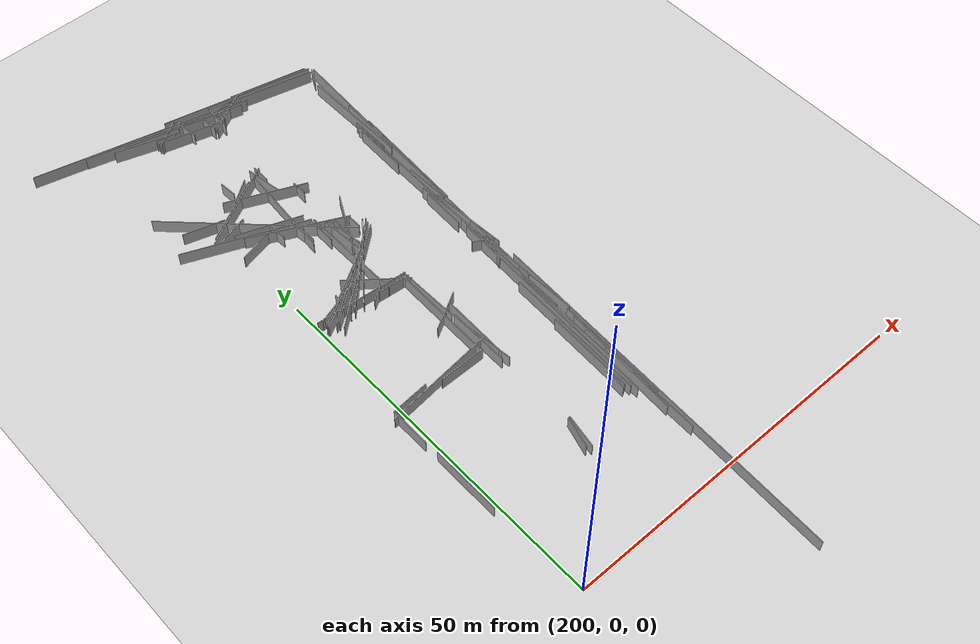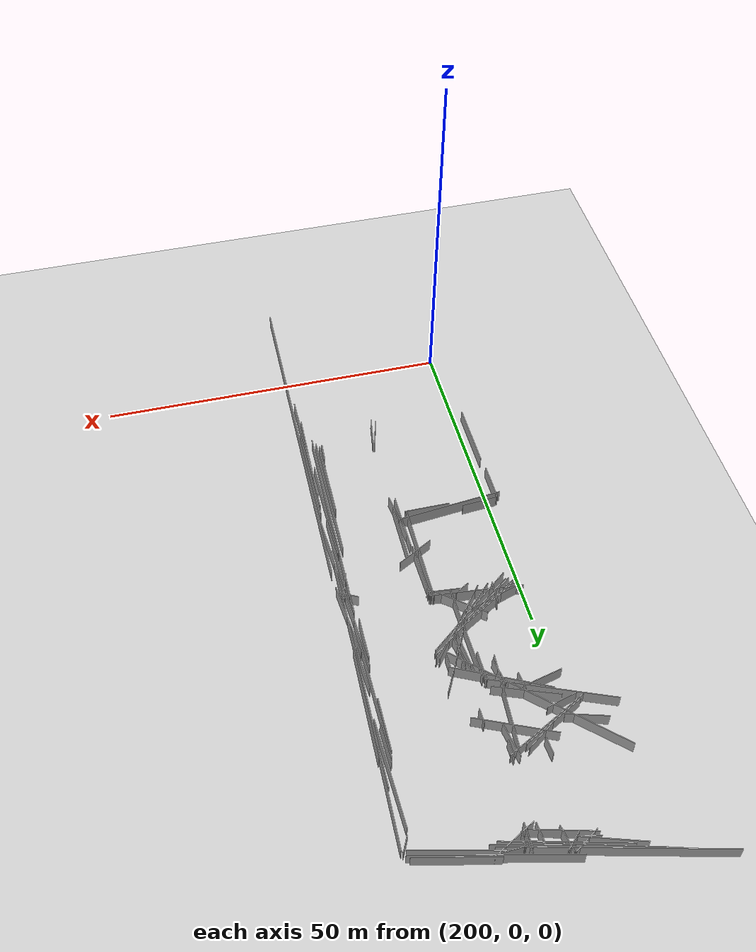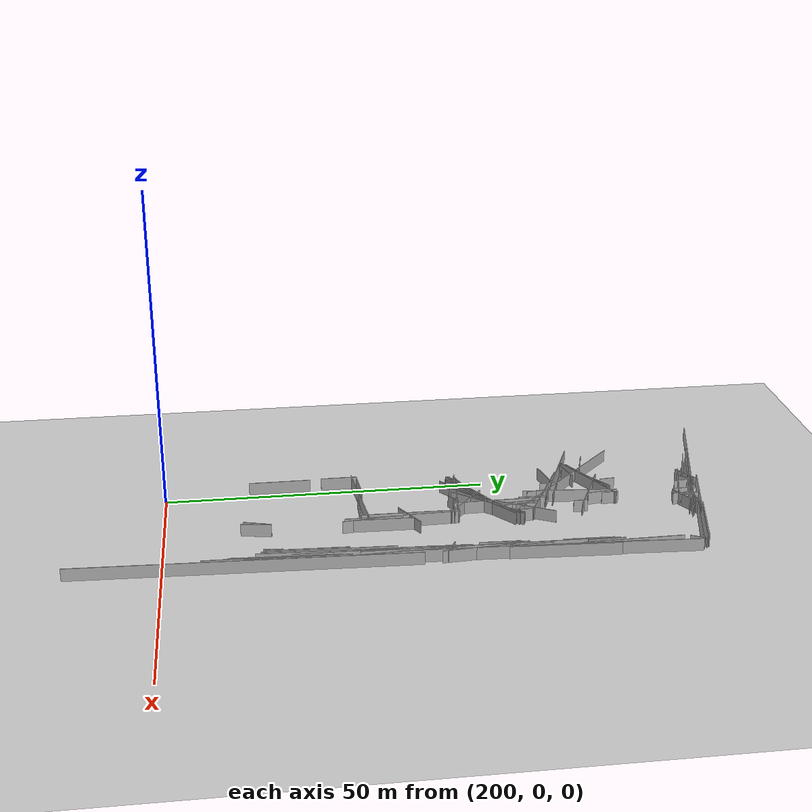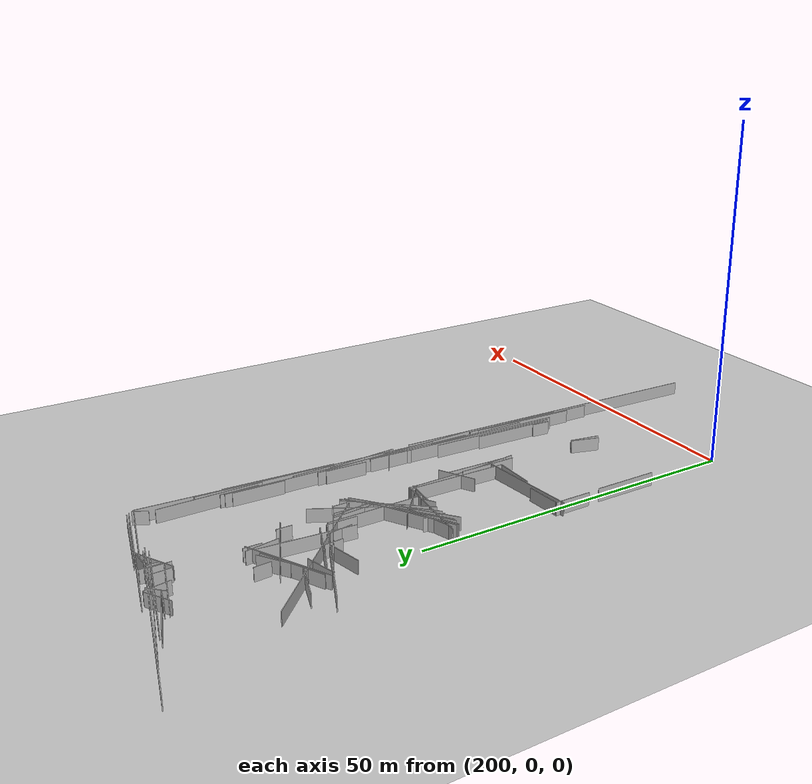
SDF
<sdf version="1.6">
 <world name="slam_world">
  <model name="ground_plane">
   <static>true</static>
   <link name="link">
    <collision name="collision">
     <geometry><plane><normal>0 0 1</normal><size>100 100</size></plane></geometry>
    </collision>
    <visual name="visual">
     <geometry><plane><normal>0 0 1</normal><size>100 100</size></plane></geometry>
     <material>
      <ambient>0.8 0.8 0.8 1</ambient>
      <diffuse>0.8 0.8 0.8 1</diffuse>
      <specular>0.8 0.8 0.8 1</specular>
     </material>
    </visual>
   </link>
  </model>
  <model name="wall_1">
   <static>true</static>
   <pose>223.50000000000003 19.400000000000006 1.0 0 0 1.5451609182732169</pose>
   <link name="link">
    <collision name="collision"><geometry><box><size>15.60512736250495 0.1 2.0</size></box></geometry></collision>
    <visual name="visual">
     <geometry><box><size>15.60512736250495 0.1 2.0</size></box></geometry>
     <material><ambient>0.5 0.5 0.5 1</ambient><diffuse>0.7 0.7 0.7 1</diffuse></material>
    </visual>
   </link>
  </model>
  <model name="wall_8">
   <static>true</static>
   <pose>198.90000000000003 17.799999999999997 1.0 0 0 1.5707963267948966</pose>
   <link name="link">
    <collision name="collision"><geometry><box><size>9.599999999999994 0.1 2.0</size></box></geometry></collision>
    <visual name="visual">
     <geometry><box><size>9.599999999999994 0.1 2.0</size></box></geometry>
     <material><ambient>0.5 0.5 0.5 1</ambient><diffuse>0.7 0.7 0.7 1</diffuse></material>
    </visual>
   </link>
  </model>
  <model name="wall_11">
   <static>true</static>
   <pose>223.60000000000002 11.800000000000011 1.0 0 0 1.5359267452401077</pose>
   <link name="link">
    <collision name="collision"><geometry><box><size>51.6313858035982 0.1 2.0</size></box></geometry></collision>
    <visual name="visual">
     <geometry><box><size>51.6313858035982 0.1 2.0</size></box></geometry>
     <material><ambient>0.5 0.5 0.5 1</ambient><diffuse>0.7 0.7 0.7 1</diffuse></material>
    </visual>
   </link>
  </model>
  <model name="wall_12">
   <static>true</static>
   <pose>225.30000000000004 70.70000000000002 1.0 0 0 1.521453694541926</pose>
   <link name="link">
    <collision name="collision"><geometry><box><size>16.21974105835231 0.1 2.0</size></box></geometry></collision>
    <visual name="visual">
     <geometry><box><size>16.21974105835231 0.1 2.0</size></box></geometry>
     <material><ambient>0.5 0.5 0.5 1</ambient><diffuse>0.7 0.7 0.7 1</diffuse></material>
    </visual>
   </link>
  </model>
  <model name="wall_16">
   <static>true</static>
   <pose>224.40000000000003 52.30000000000001 1.0 0 0 1.5325636003592957</pose>
   <link name="link">
    <collision name="collision"><geometry><box><size>36.6267661690191 0.1 2.0</size></box></geometry></collision>
    <visual name="visual">
     <geometry><box><size>36.6267661690191 0.1 2.0</size></box></geometry>
     <material><ambient>0.5 0.5 0.5 1</ambient><diffuse>0.7 0.7 0.7 1</diffuse></material>
    </visual>
   </link>
  </model>
  <model name="wall_21">
   <static>true</static>
   <pose>222.50000000000003 29.10000000000001 1.0 0 0 1.5325983551641331</pose>
   <link name="link">
    <collision name="collision"><geometry><box><size>31.42292157008957 0.1 2.0</size></box></geometry></collision>
    <visual name="visual">
     <geometry><box><size>31.42292157008957 0.1 2.0</size></box></geometry>
     <material><ambient>0.5 0.5 0.5 1</ambient><diffuse>0.7 0.7 0.7 1</diffuse></material>
    </visual>
   </link>
  </model>
  <model name="wall_24">
   <static>true</static>
   <pose>223.40000000000003 47.60000000000001 1.0 0 0 1.555172598174419</pose>
   <link name="link">
    <collision name="collision"><geometry><box><size>38.40468721393263 0.1 2.0</size></box></geometry></collision>
    <visual name="visual">
     <geometry><box><size>38.40468721393263 0.1 2.0</size></box></geometry>
     <material><ambient>0.5 0.5 0.5 1</ambient><diffuse>0.7 0.7 0.7 1</diffuse></material>
    </visual>
   </link>
  </model>
  <model name="wall_37">
   <static>true</static>
   <pose>223.10000000000002 14.600000000000009 1.0 0 0 1.5485777614681788</pose>
   <link name="link">
    <collision name="collision">
     <geometry><box><size>18.004443895883067 0.1 2.0</size></box></geometry>
    </collision>
    <visual name="visual">
     <geometry><box><size>18.004443895883067 0.1 2.0</size></box></geometry>
     <material><ambient>0.5 0.5 0.5 1</ambient><diffuse>0.7 0.7 0.7 1</diffuse></material>
    </visual>
   </link>
  </model>
  <model name="wall_61">
   <static>true</static>
   <pose>200.90000000000003 84.30000000000001 1.0 0 0 -0.24497866312686414</pose>
   <link name="link">
    <collision name="collision">
     <geometry><box><size>28.861739379323623 0.1 2.0</size></box></geometry>
    </collision>
    <visual name="visual">
     <geometry><box><size>28.861739379323623 0.1 2.0</size></box></geometry>
     <material><ambient>0.5 0.5 0.5 1</ambient><diffuse>0.7 0.7 0.7 1</diffuse></material>
    </visual>
   </link>
  </model>
  <model name="wall_83">
   <static>true</static>
   <pose>221.8 24.10000000000001 1.0 0 0 1.5405025668761203</pose>
   <link name="link">
    <collision name="collision">
     <geometry><box><size>19.809088823062996 0.1 2.0</size></box></geometry>
    </collision>
    <visual name="visual">
     <geometry><box><size>19.809088823062996 0.1 2.0</size></box></geometry>
     <material><ambient>0.5 0.5 0.5 1</ambient><diffuse>0.7 0.7 0.7 1</diffuse></material>
    </visual>
   </link>
  </model>
  <model name="wall_109">
   <static>true</static>
   <pose>213.30000000000004 30.100000000000023 1.0 0 0 -1.457004319651187</pose>
   <link name="link">
    <collision name="collision"><geometry><box><size>7.045565981523416 0.1 2.0</size></box></geometry></collision>
    <visual name="visual">
     <geometry><box><size>7.045565981523416 0.1 2.0</size></box></geometry>
     <material><ambient>0.5 0.5 0.5 1</ambient><diffuse>0.7 0.7 0.7 1</diffuse></material>
    </visual>
   </link>
  </model>
  <model name="wall_140">
   <static>true</static>
   <pose>222.80000000000004 26.60000000000001 1.0 0 0 1.5582969777755358</pose>
   <link name="link">
    <collision name="collision"><geometry><box><size>16.00124995117572 0.1 2.0</size></box></geometry></collision>
    <visual name="visual">
     <geometry><box><size>16.00124995117572 0.1 2.0</size></box></geometry>
     <material><ambient>0.5 0.5 0.5 1</ambient><diffuse>0.7 0.7 0.7 1</diffuse></material>
    </visual>
   </link>
  </model>
  <model name="wall_145">
   <static>true</static>
   <pose>212.00000000000003 37.10000000000002 1.0 0 0 1.5574637835007517</pose>
   <link name="link">
    <collision name="collision">
     <geometry><box><size>15.001333274079341 0.1 2.0</size></box></geometry>
    </collision>
    <visual name="visual">
     <geometry><box><size>15.001333274079341 0.1 2.0</size></box></geometry>
     <material><ambient>0.5 0.5 0.5 1</ambient><diffuse>0.7 0.7 0.7 1</diffuse></material>
    </visual>
   </link>
  </model>
  <model name="wall_151">
   <static>true</static>
   <pose>215.10000000000002 81.80000000000001 1.0 0 0 -0.23109066719589785</pose>
   <link name="link">
    <collision name="collision"><geometry><box><size>20.95709903588756 0.1 2.0</size></box></geometry></collision>
    <visual name="visual">
     <geometry><box><size>20.95709903588756 0.1 2.0</size></box></geometry>
     <material><ambient>0.5 0.5 0.5 1</ambient><diffuse>0.7 0.7 0.7 1</diffuse></material>
    </visual>
   </link>
  </model>
  <model name="wall_162">
   <static>true</static>
   <pose>207.20000000000002 58.80000000000001 1.0 0 0 -0.45706875654779</pose>
   <link name="link">
    <collision name="collision"><geometry><box><size>13.59558751948586 0.1 2.0</size></box></geometry></collision>
    <visual name="visual">
     <geometry><box><size>13.59558751948586 0.1 2.0</size></box></geometry>
     <material><ambient>0.5 0.5 0.5 1</ambient><diffuse>0.7 0.7 0.7 1</diffuse></material>
    </visual>
   </link>
  </model>
  <model name="wall_185">
   <static>true</static>
   <pose>205.70000000000005 82.40000000000002 1.0 0 0 -0.25168997175818636</pose>
   <link name="link">
    <collision name="collision"><geometry><box><size>14.45544879967412 0.1 2.0</size></box></geometry></collision>
    <visual name="visual">
     <geometry><box><size>14.45544879967412 0.1 2.0</size></box></geometry>
     <material><ambient>0.5 0.5 0.5 1</ambient><diffuse>0.7 0.7 0.7 1</diffuse></material>
    </visual>
   </link>
  </model>
  <model name="wall_213">
   <static>true</static>
   <pose>219.40000000000003 80.20000000000002 1.0 0 0 -0.24084645524141302</pose>
   <link name="link">
    <collision name="collision">
     <geometry><box><size>11.738824472663332 0.1 2.0</size></box></geometry>
    </collision>
    <visual name="visual">
     <geometry><box><size>11.738824472663332 0.1 2.0</size></box></geometry>
     <material><ambient>0.5 0.5 0.5 1</ambient><diffuse>0.7 0.7 0.7 1</diffuse></material>
    </visual>
   </link>
  </model>
  <model name="wall_238">
   <static>true</static>
   <pose>213.10000000000002 54.80000000000001 1.0 0 0 1.5707963267948966</pose>
   <link name="link">
    <collision name="collision"><geometry><box><size>2.0 0.1 2.0</size></box></geometry></collision>
    <visual name="visual">
     <geometry><box><size>2.0 0.1 2.0</size></box></geometry>
     <material><ambient>0.5 0.5 0.5 1</ambient><diffuse>0.7 0.7 0.7 1</diffuse></material>
    </visual>
   </link>
  </model>
  <model name="wall_255">
   <static>true</static>
   <pose>209.5 49.20000000000002 1.0 0 0 0.7853981633974483</pose>
   <link name="link">
    <collision name="collision">
     <geometry><box><size>14.142135623730951 0.1 2.0</size></box></geometry>
    </collision>
    <visual name="visual">
     <geometry><box><size>14.142135623730951 0.1 2.0</size></box></geometry>
     <material><ambient>0.5 0.5 0.5 1</ambient><diffuse>0.7 0.7 0.7 1</diffuse></material>
    </visual>
   </link>
  </model>
  <model name="wall_286">
   <static>true</static>
   <pose>222.80000000000004 48.900000000000006 1.0 0 0 1.5385494443596444</pose>
   <link name="link">
    <collision name="collision"><geometry><box><size>6.203224967708317 0.1 2.0</size></box></geometry></collision>
    <visual name="visual">
     <geometry><box><size>6.203224967708317 0.1 2.0</size></box></geometry>
     <material><ambient>0.5 0.5 0.5 1</ambient><diffuse>0.7 0.7 0.7 1</diffuse></material>
    </visual>
   </link>
  </model>
  <model name="wall_287">
   <static>true</static>
   <pose>223.4 62.000000000000014 1.0 0 0 1.5444866095419758</pose>
   <link name="link">
    <collision name="collision"><geometry><box><size>7.602631123499279 0.1 2.0</size></box></geometry></collision>
    <visual name="visual">
     <geometry><box><size>7.602631123499279 0.1 2.0</size></box></geometry>
     <material><ambient>0.5 0.5 0.5 1</ambient><diffuse>0.7 0.7 0.7 1</diffuse></material>
    </visual>
   </link>
  </model>
  <model name="wall_288">
   <static>true</static>
   <pose>212.60000000000002 40.20000000000002 1.0 0 0 -1.5480729659532504</pose>
   <link name="link">
    <collision name="collision"><geometry><box><size>8.802272433866166 0.1 2.0</size></box></geometry></collision>
    <visual name="visual">
     <geometry><box><size>8.802272433866166 0.1 2.0</size></box></geometry>
     <material><ambient>0.5 0.5 0.5 1</ambient><diffuse>0.7 0.7 0.7 1</diffuse></material>
    </visual>
   </link>
  </model>
  <model name="wall_299">
   <static>true</static>
   <pose>207.9 48.80000000000001 1.0 0 0 0.6435011087932851</pose>
   <link name="link">
    <collision name="collision"><geometry><box><size>16.00000000000002 0.1 2.0</size></box></geometry></collision>
    <visual name="visual">
     <geometry><box><size>16.00000000000002 0.1 2.0</size></box></geometry>
     <material><ambient>0.5 0.5 0.5 1</ambient><diffuse>0.7 0.7 0.7 1</diffuse></material>
    </visual>
   </link>
  </model>
  <model name="wall_307">
   <static>true</static>
   <pose>223.10000000000002 17.60000000000001 1.0 0 0 1.5220544754849679</pose>
   <link name="link">
    <collision name="collision"><geometry><box><size>16.41950060141904 0.1 2.0</size></box></geometry></collision>
    <visual name="visual">
     <geometry><box><size>16.41950060141904 0.1 2.0</size></box></geometry>
     <material><ambient>0.5 0.5 0.5 1</ambient><diffuse>0.7 0.7 0.7 1</diffuse></material>
    </visual>
   </link>
  </model>
  <model name="wall_311">
   <static>true</static>
   <pose>201.10000000000002 83.10000000000001 1.0 0 0 -0.3142318990843377</pose>
   <link name="link">
    <collision name="collision"><geometry><box><size>8.411896337925235 0.1 2.0</size></box></geometry></collision>
    <visual name="visual">
     <geometry><box><size>8.411896337925235 0.1 2.0</size></box></geometry>
     <material><ambient>0.5 0.5 0.5 1</ambient><diffuse>0.7 0.7 0.7 1</diffuse></material>
    </visual>
   </link>
  </model>
  <model name="wall_329">
   <static>true</static>
   <pose>204.00000000000003 45.80000000000001 1.0 0 0 1.5083775167989426</pose>
   <link name="link">
    <collision name="collision">
     <geometry><box><size>3.2062439083762673 0.1 2.0</size></box></geometry>
    </collision>
    <visual name="visual">
     <geometry><box><size>3.2062439083762673 0.1 2.0</size></box></geometry>
     <material><ambient>0.5 0.5 0.5 1</ambient><diffuse>0.7 0.7 0.7 1</diffuse></material>
    </visual>
   </link>
  </model>
  <model name="wall_334">
   <static>true</static>
   <pose>212.4 80.4 1.0 0 0 0.5041659614791507</pose>
   <link name="link">
    <collision name="collision"><geometry><box><size>6.624198064671682 0.1 2.0</size></box></geometry></collision>
    <visual name="visual">
     <geometry><box><size>6.624198064671682 0.1 2.0</size></box></geometry>
     <material><ambient>0.5 0.5 0.5 1</ambient><diffuse>0.7 0.7 0.7 1</diffuse></material>
    </visual>
   </link>
  </model>
  <model name="wall_344">
   <static>true</static>
   <pose>209.60000000000002 51.2 1.0 0 0 -1.5569083308639264</pose>
   <link name="link">
    <collision name="collision"><geometry><box><size>14.40138882191576 0.1 2.0</size></box></geometry></collision>
    <visual name="visual">
     <geometry><box><size>14.40138882191576 0.1 2.0</size></box></geometry>
     <material><ambient>0.5 0.5 0.5 1</ambient><diffuse>0.7 0.7 0.7 1</diffuse></material>
    </visual>
   </link>
  </model>
  <model name="wall_356">
   <static>true</static>
   <pose>201.4 61.90000000000002 1.0 0 0 -0.395689592054582</pose>
   <link name="link">
    <collision name="collision">
     <geometry><box><size>17.123083834403204 0.1 2.0</size></box></geometry>
    </collision>
    <visual name="visual">
     <geometry><box><size>17.123083834403204 0.1 2.0</size></box></geometry>
     <material><ambient>0.5 0.5 0.5 1</ambient><diffuse>0.7 0.7 0.7 1</diffuse></material>
    </visual>
   </link>
  </model>
  <model name="wall_363">
   <static>true</static>
   <pose>219.60000000000002 81.00000000000001 1.0 0 0 -0.22266094063636502</pose>
   <link name="link">
    <collision name="collision">
     <geometry><box><size>10.868302535354843 0.1 2.0</size></box></geometry>
    </collision>
    <visual name="visual">
     <geometry><box><size>10.868302535354843 0.1 2.0</size></box></geometry>
     <material><ambient>0.5 0.5 0.5 1</ambient><diffuse>0.7 0.7 0.7 1</diffuse></material>
    </visual>
   </link>
  </model>
  <model name="wall_379">
   <static>true</static>
   <pose>208.90000000000003 29.600000000000023 1.0 0 0 0.0</pose>
   <link name="link">
    <collision name="collision"><geometry><box><size>6.399999999999977 0.1 2.0</size></box></geometry></collision>
    <visual name="visual">
     <geometry><box><size>6.399999999999977 0.1 2.0</size></box></geometry>
     <material><ambient>0.5 0.5 0.5 1</ambient><diffuse>0.7 0.7 0.7 1</diffuse></material>
    </visual>
   </link>
  </model>
  <model name="wall_381">
   <static>true</static>
   <pose>224.4 68.60000000000001 1.0 0 0 -1.5576391913221417</pose>
   <link name="link">
    <collision name="collision"><geometry><box><size>15.20131573252791 0.1 2.0</size></box></geometry></collision>
    <visual name="visual">
     <geometry><box><size>15.20131573252791 0.1 2.0</size></box></geometry>
     <material><ambient>0.5 0.5 0.5 1</ambient><diffuse>0.7 0.7 0.7 1</diffuse></material>
    </visual>
   </link>
  </model>
  <model name="wall_382">
   <static>true</static>
   <pose>204.1 83.10000000000001 1.0 0 0 -0.2719384216544951</pose>
   <link name="link">
    <collision name="collision"><geometry><box><size>21.59351754578212 0.1 2.0</size></box></geometry></collision>
    <visual name="visual">
     <geometry><box><size>21.59351754578212 0.1 2.0</size></box></geometry>
     <material><ambient>0.5 0.5 0.5 1</ambient><diffuse>0.7 0.7 0.7 1</diffuse></material>
    </visual>
   </link>
  </model>
  <model name="wall_412">
   <static>true</static>
   <pose>205.8 30.000000000000014 1.0 0 0 0.10352467451054413</pose>
   <link name="link">
    <collision name="collision"><geometry><box><size>15.4828937863695 0.1 2.0</size></box></geometry></collision>
    <visual name="visual">
     <geometry><box><size>15.4828937863695 0.1 2.0</size></box></geometry>
     <material><ambient>0.5 0.5 0.5 1</ambient><diffuse>0.7 0.7 0.7 1</diffuse></material>
    </visual>
   </link>
  </model>
  <model name="wall_424">
   <static>true</static>
   <pose>221.3 20.900000000000006 1.0 0 0 1.5380211823908227</pose>
   <link name="link">
    <collision name="collision"><geometry><box><size>12.20655561573369 0.1 2.0</size></box></geometry></collision>
    <visual name="visual">
     <geometry><box><size>12.20655561573369 0.1 2.0</size></box></geometry>
     <material><ambient>0.5 0.5 0.5 1</ambient><diffuse>0.7 0.7 0.7 1</diffuse></material>
    </visual>
   </link>
  </model>
  <model name="wall_433">
   <static>true</static>
   <pose>208.10000000000002 48.0 1.0 0 0 0.6786624907483135</pose>
   <link name="link">
    <collision name="collision">
     <geometry><box><size>15.929846201391884 0.1 2.0</size></box></geometry>
    </collision>
    <visual name="visual">
     <geometry><box><size>15.929846201391884 0.1 2.0</size></box></geometry>
     <material><ambient>0.5 0.5 0.5 1</ambient><diffuse>0.7 0.7 0.7 1</diffuse></material>
    </visual>
   </link>
  </model>
  <model name="wall_475">
   <static>true</static>
   <pose>204.80000000000004 59.90000000000002 1.0 0 0 -1.4940244355251227</pose>
   <link name="link">
    <collision name="collision"><geometry><box><size>2.607680962081053 0.1 2.0</size></box></geometry></collision>
    <visual name="visual">
     <geometry><box><size>2.607680962081053 0.1 2.0</size></box></geometry>
     <material><ambient>0.5 0.5 0.5 1</ambient><diffuse>0.7 0.7 0.7 1</diffuse></material>
    </visual>
   </link>
  </model>
  <model name="wall_498">
   <static>true</static>
   <pose>198.70000000000005 27.200000000000003 1.0 0 0 1.5707963267948966</pose>
   <link name="link">
    <collision name="collision"><geometry><box><size>5.599999999999994 0.1 2.0</size></box></geometry></collision>
    <visual name="visual">
     <geometry><box><size>5.599999999999994 0.1 2.0</size></box></geometry>
     <material><ambient>0.5 0.5 0.5 1</ambient><diffuse>0.7 0.7 0.7 1</diffuse></material>
    </visual>
   </link>
  </model>
  <model name="wall_510">
   <static>true</static>
   <pose>207.60000000000002 65.90000000000002 1.0 0 0 -0.4236689218775139</pose>
   <link name="link">
    <collision name="collision"><geometry><box><size>11.18928058455953 0.1 2.0</size></box></geometry></collision>
    <visual name="visual">
     <geometry><box><size>11.18928058455953 0.1 2.0</size></box></geometry>
     <material><ambient>0.5 0.5 0.5 1</ambient><diffuse>0.7 0.7 0.7 1</diffuse></material>
    </visual>
   </link>
  </model>
  <model name="wall_515">
   <static>true</static>
   <pose>211.3 63.70000000000002 1.0 0 0 1.5707963267948966</pose>
   <link name="link">
    <collision name="collision">
     <geometry><box><size>2.1999999999999886 0.1 2.0</size></box></geometry>
    </collision>
    <visual name="visual">
     <geometry><box><size>2.1999999999999886 0.1 2.0</size></box></geometry>
     <material><ambient>0.5 0.5 0.5 1</ambient><diffuse>0.7 0.7 0.7 1</diffuse></material>
    </visual>
   </link>
  </model>
  <model name="wall_518">
   <static>true</static>
   <pose>204.20000000000002 82.50000000000001 1.0 0 0 0.5743048301747007</pose>
   <link name="link">
    <collision name="collision"><geometry><box><size>4.049691346263355 0.1 2.0</size></box></geometry></collision>
    <visual name="visual">
     <geometry><box><size>4.049691346263355 0.1 2.0</size></box></geometry>
     <material><ambient>0.5 0.5 0.5 1</ambient><diffuse>0.7 0.7 0.7 1</diffuse></material>
    </visual>
   </link>
  </model>
  <model name="wall_531">
   <static>true</static>
   <pose>201.40000000000003 30.200000000000003 1.0 0 0 0.07982998571223844</pose>
   <link name="link">
    <collision name="collision"><geometry><box><size>5.015974481593782 0.1 2.0</size></box></geometry></collision>
    <visual name="visual">
     <geometry><box><size>5.015974481593782 0.1 2.0</size></box></geometry>
     <material><ambient>0.5 0.5 0.5 1</ambient><diffuse>0.7 0.7 0.7 1</diffuse></material>
    </visual>
   </link>
  </model>
  <model name="wall_534">
   <static>true</static>
   <pose>223.20000000000002 41.7 1.0 0 0 -0.4939413689195884</pose>
   <link name="link">
    <collision name="collision"><geometry><box><size>2.952964612046653 0.1 2.0</size></box></geometry></collision>
    <visual name="visual">
     <geometry><box><size>2.952964612046653 0.1 2.0</size></box></geometry>
     <material><ambient>0.5 0.5 0.5 1</ambient><diffuse>0.7 0.7 0.7 1</diffuse></material>
    </visual>
   </link>
  </model>
  <model name="wall_535">
   <static>true</static>
   <pose>208.10000000000002 44.20000000000002 1.0 0 0 0.5404195002705799</pose>
   <link name="link">
    <collision name="collision"><geometry><box><size>2.332380757938114 0.1 2.0</size></box></geometry></collision>
    <visual name="visual">
     <geometry><box><size>2.332380757938114 0.1 2.0</size></box></geometry>
     <material><ambient>0.5 0.5 0.5 1</ambient><diffuse>0.7 0.7 0.7 1</diffuse></material>
    </visual>
   </link>
  </model>
  <model name="wall_558">
   <static>true</static>
   <pose>204.70000000000002 46.900000000000006 1.0 0 0 0.5369107427400438</pose>
   <link name="link">
    <collision name="collision"><geometry><box><size>9.775479527879979 0.1 2.0</size></box></geometry></collision>
    <visual name="visual">
     <geometry><box><size>9.775479527879979 0.1 2.0</size></box></geometry>
     <material><ambient>0.5 0.5 0.5 1</ambient><diffuse>0.7 0.7 0.7 1</diffuse></material>
    </visual>
   </link>
  </model>
  <model name="wall_560">
   <static>true</static>
   <pose>209.10000000000002 56.60000000000001 1.0 0 0 -1.5707963267948966</pose>
   <link name="link">
    <collision name="collision"><geometry><box><size>4.400000000000006 0.1 2.0</size></box></geometry></collision>
    <visual name="visual">
     <geometry><box><size>4.400000000000006 0.1 2.0</size></box></geometry>
     <material><ambient>0.5 0.5 0.5 1</ambient><diffuse>0.7 0.7 0.7 1</diffuse></material>
    </visual>
   </link>
  </model>
  <model name="wall_565">
   <static>true</static>
   <pose>223.90000000000003 64.60000000000001 1.0 0 0 1.5707963267948966</pose>
   <link name="link">
    <collision name="collision"><geometry><box><size>5.599999999999994 0.1 2.0</size></box></geometry></collision>
    <visual name="visual">
     <geometry><box><size>5.599999999999994 0.1 2.0</size></box></geometry>
     <material><ambient>0.5 0.5 0.5 1</ambient><diffuse>0.7 0.7 0.7 1</diffuse></material>
    </visual>
   </link>
  </model>
  <model name="wall_577">
   <static>true</static>
   <pose>208.70000000000002 67.80000000000001 1.0 0 0 -1.4056476493802679</pose>
   <link name="link">
    <collision name="collision"><geometry><box><size>4.866210024238589 0.1 2.0</size></box></geometry></collision>
    <visual name="visual">
     <geometry><box><size>4.866210024238589 0.1 2.0</size></box></geometry>
     <material><ambient>0.5 0.5 0.5 1</ambient><diffuse>0.7 0.7 0.7 1</diffuse></material>
    </visual>
   </link>
  </model>
  <model name="wall_579">
   <static>true</static>
   <pose>203.50000000000003 62.70000000000002 1.0 0 0 -0.7691833683930456</pose>
   <link name="link">
    <collision name="collision">
     <geometry><box><size>26.166390656718402 0.1 2.0</size></box></geometry>
    </collision>
    <visual name="visual">
     <geometry><box><size>26.166390656718402 0.1 2.0</size></box></geometry>
     <material><ambient>0.5 0.5 0.5 1</ambient><diffuse>0.7 0.7 0.7 1</diffuse></material>
    </visual>
   </link>
  </model>
  <model name="wall_592">
   <static>true</static>
   <pose>209.30000000000004 46.000000000000014 1.0 0 0 -0.6889243882148601</pose>
   <link name="link">
    <collision name="collision"><geometry><box><size>8.8090862182181 0.1 2.0</size></box></geometry></collision>
    <visual name="visual">
     <geometry><box><size>8.8090862182181 0.1 2.0</size></box></geometry>
     <material><ambient>0.5 0.5 0.5 1</ambient><diffuse>0.7 0.7 0.7 1</diffuse></material>
    </visual>
   </link>
  </model>
  <model name="wall_602">
   <static>true</static>
   <pose>213.50000000000003 81.70000000000002 1.0 0 0 0.04164257909858596</pose>
   <link name="link">
    <collision name="collision"><geometry><box><size>4.804164859785736 0.1 2.0</size></box></geometry></collision>
    <visual name="visual">
     <geometry><box><size>4.804164859785736 0.1 2.0</size></box></geometry>
     <material><ambient>0.5 0.5 0.5 1</ambient><diffuse>0.7 0.7 0.7 1</diffuse></material>
    </visual>
   </link>
  </model>
  <model name="wall_606">
   <static>true</static>
   <pose>210.60000000000002 53.80000000000001 1.0 0 0 -1.4827889532671528</pose>
   <link name="link">
    <collision name="collision"><geometry><box><size>6.826419266350418 0.1 2.0</size></box></geometry></collision>
    <visual name="visual">
     <geometry><box><size>6.826419266350418 0.1 2.0</size></box></geometry>
     <material><ambient>0.5 0.5 0.5 1</ambient><diffuse>0.7 0.7 0.7 1</diffuse></material>
    </visual>
   </link>
  </model>
  <model name="wall_625">
   <static>true</static>
   <pose>224.9 58.30000000000001 1.0 0 0 1.5226408137349805</pose>
   <link name="link">
    <collision name="collision">
     <geometry><box><size>16.619265928433805 0.1 2.0</size></box></geometry>
    </collision>
    <visual name="visual">
     <geometry><box><size>16.619265928433805 0.1 2.0</size></box></geometry>
     <material><ambient>0.5 0.5 0.5 1</ambient><diffuse>0.7 0.7 0.7 1</diffuse></material>
    </visual>
   </link>
  </model>
  <model name="wall_637">
   <static>true</static>
   <pose>223.60000000000002 40.20000000000002 1.0 0 0 -1.5323537367737086</pose>
   <link name="link">
    <collision name="collision">
     <geometry><box><size>26.019223662515376 0.1 2.0</size></box></geometry>
    </collision>
    <visual name="visual">
     <geometry><box><size>26.019223662515376 0.1 2.0</size></box></geometry>
     <material><ambient>0.5 0.5 0.5 1</ambient><diffuse>0.7 0.7 0.7 1</diffuse></material>
    </visual>
   </link>
  </model>
  <model name="wall_651">
   <static>true</static>
   <pose>211.10000000000002 54.30000000000001 1.0 0 0 -1.4237179714065018</pose>
   <link name="link">
    <collision name="collision"><geometry><box><size>5.458937625582443 0.1 2.0</size></box></geometry></collision>
    <visual name="visual">
     <geometry><box><size>5.458937625582443 0.1 2.0</size></box></geometry>
     <material><ambient>0.5 0.5 0.5 1</ambient><diffuse>0.7 0.7 0.7 1</diffuse></material>
    </visual>
   </link>
  </model>
  <model name="wall_666">
   <static>true</static>
   <pose>204.60000000000002 46.7 1.0 0 0 0.30704573201878854</pose>
   <link name="link">
    <collision name="collision"><geometry><box><size>8.60232526704267 0.1 2.0</size></box></geometry></collision>
    <visual name="visual">
     <geometry><box><size>8.60232526704267 0.1 2.0</size></box></geometry>
     <material><ambient>0.5 0.5 0.5 1</ambient><diffuse>0.7 0.7 0.7 1</diffuse></material>
    </visual>
   </link>
  </model>
  <model name="wall_687">
   <static>true</static>
   <pose>204.90000000000003 68.00000000000001 1.0 0 0 0.6107259643892058</pose>
   <link name="link">
    <collision name="collision"><geometry><box><size>4.882622246293471 0.1 2.0</size></box></geometry></collision>
    <visual name="visual">
     <geometry><box><size>4.882622246293471 0.1 2.0</size></box></geometry>
     <material><ambient>0.5 0.5 0.5 1</ambient><diffuse>0.7 0.7 0.7 1</diffuse></material>
    </visual>
   </link>
  </model>
  <model name="wall_691">
   <static>true</static>
   <pose>202.8 66.50000000000001 1.0 0 0 0.49116359828625894</pose>
   <link name="link">
    <collision name="collision"><geometry><box><size>9.752948272189304 0.1 2.0</size></box></geometry></collision>
    <visual name="visual">
     <geometry><box><size>9.752948272189304 0.1 2.0</size></box></geometry>
     <material><ambient>0.5 0.5 0.5 1</ambient><diffuse>0.7 0.7 0.7 1</diffuse></material>
    </visual>
   </link>
  </model>
  <model name="wall_713">
   <static>true</static>
   <pose>209.20000000000002 80.5 1.0 0 0 -1.5042281630190766</pose>
   <link name="link">
    <collision name="collision"><geometry><box><size>3.006659275674581 0.1 2.0</size></box></geometry></collision>
    <visual name="visual">
     <geometry><box><size>3.006659275674581 0.1 2.0</size></box></geometry>
     <material><ambient>0.5 0.5 0.5 1</ambient><diffuse>0.7 0.7 0.7 1</diffuse></material>
    </visual>
   </link>
  </model>
  <model name="wall_734">
   <static>true</static>
   <pose>211.3 53.90000000000002 1.0 0 0 1.5707963267948966</pose>
   <link name="link">
    <collision name="collision"><geometry><box><size>5.400000000000006 0.1 2.0</size></box></geometry></collision>
    <visual name="visual">
     <geometry><box><size>5.400000000000006 0.1 2.0</size></box></geometry>
     <material><ambient>0.5 0.5 0.5 1</ambient><diffuse>0.7 0.7 0.7 1</diffuse></material>
    </visual>
   </link>
  </model>
  <model name="wall_754">
   <static>true</static>
   <pose>207.60000000000002 62.2 1.0 0 0 1.497399000893285</pose>
   <link name="link">
    <collision name="collision">
     <geometry><box><size>13.636715146984622 0.1 2.0</size></box></geometry>
    </collision>
    <visual name="visual">
     <geometry><box><size>13.636715146984622 0.1 2.0</size></box></geometry>
     <material><ambient>0.5 0.5 0.5 1</ambient><diffuse>0.7 0.7 0.7 1</diffuse></material>
    </visual>
   </link>
  </model>
  <model name="wall_758">
   <static>true</static>
   <pose>205.70000000000005 82.20000000000002 1.0 0 0 0.7853981633974483</pose>
   <link name="link">
    <collision name="collision">
     <geometry><box><size>2.8284271247461903 0.1 2.0</size></box></geometry>
    </collision>
    <visual name="visual">
     <geometry><box><size>2.8284271247461903 0.1 2.0</size></box></geometry>
     <material><ambient>0.5 0.5 0.5 1</ambient><diffuse>0.7 0.7 0.7 1</diffuse></material>
    </visual>
   </link>
  </model>
  <model name="wall_795">
   <static>true</static>
   <pose>210.50000000000003 44.000000000000014 1.0 0 0 -0.09065988720074569</pose>
   <link name="link">
    <collision name="collision"><geometry><box><size>4.418144406874939 0.1 2.0</size></box></geometry></collision>
    <visual name="visual">
     <geometry><box><size>4.418144406874939 0.1 2.0</size></box></geometry>
     <material><ambient>0.5 0.5 0.5 1</ambient><diffuse>0.7 0.7 0.7 1</diffuse></material>
    </visual>
   </link>
  </model>
  <model name="wall_807">
   <static>true</static>
   <pose>213.60000000000002 32.60000000000001 1.0 0 0 1.5499660067586747</pose>
   <link name="link">
    <collision name="collision"><geometry><box><size>9.602083107326239 0.1 2.0</size></box></geometry></collision>
    <visual name="visual">
     <geometry><box><size>9.602083107326239 0.1 2.0</size></box></geometry>
     <material><ambient>0.5 0.5 0.5 1</ambient><diffuse>0.7 0.7 0.7 1</diffuse></material>
    </visual>
   </link>
  </model>
  <model name="wall_809">
   <static>true</static>
   <pose>205.8 47.80000000000001 1.0 0 0 0.5431895762878254</pose>
   <link name="link">
    <collision name="collision">
     <geometry><box><size>12.382245353731292 0.1 2.0</size></box></geometry>
    </collision>
    <visual name="visual">
     <geometry><box><size>12.382245353731292 0.1 2.0</size></box></geometry>
     <material><ambient>0.5 0.5 0.5 1</ambient><diffuse>0.7 0.7 0.7 1</diffuse></material>
    </visual>
   </link>
  </model>
  <model name="wall_822">
   <static>true</static>
   <pose>206.30000000000004 45.000000000000014 1.0 0 0 -0.0934767811585907</pose>
   <link name="link">
    <collision name="collision"><geometry><box><size>12.85612694399057 0.1 2.0</size></box></geometry></collision>
    <visual name="visual">
     <geometry><box><size>12.85612694399057 0.1 2.0</size></box></geometry>
     <material><ambient>0.5 0.5 0.5 1</ambient><diffuse>0.7 0.7 0.7 1</diffuse></material>
    </visual>
   </link>
  </model>
  <model name="wall_848">
   <static>true</static>
   <pose>210.00000000000003 49.30000000000001 1.0 0 0 0.8936687542579045</pose>
   <link name="link">
    <collision name="collision">
     <geometry><box><size>13.087398519186292 0.1 2.0</size></box></geometry>
    </collision>
    <visual name="visual">
     <geometry><box><size>13.087398519186292 0.1 2.0</size></box></geometry>
     <material><ambient>0.5 0.5 0.5 1</ambient><diffuse>0.7 0.7 0.7 1</diffuse></material>
    </visual>
   </link>
  </model>
  <model name="wall_859">
   <static>true</static>
   <pose>203.70000000000002 66.70000000000002 1.0 0 0 0.4908517803980197</pose>
   <link name="link">
    <collision name="collision"><geometry><box><size>13.15294643796587 0.1 2.0</size></box></geometry></collision>
    <visual name="visual">
     <geometry><box><size>13.15294643796587 0.1 2.0</size></box></geometry>
     <material><ambient>0.5 0.5 0.5 1</ambient><diffuse>0.7 0.7 0.7 1</diffuse></material>
    </visual>
   </link>
  </model>
  <model name="wall_871">
   <static>true</static>
   <pose>201.60000000000002 44.80000000000001 1.0 0 0 0.4993467216801174</pose>
   <link name="link">
    <collision name="collision"><geometry><box><size>2.505992817228368 0.1 2.0</size></box></geometry></collision>
    <visual name="visual">
     <geometry><box><size>2.505992817228368 0.1 2.0</size></box></geometry>
     <material><ambient>0.5 0.5 0.5 1</ambient><diffuse>0.7 0.7 0.7 1</diffuse></material>
    </visual>
   </link>
  </model>
  <model name="wall_894">
   <static>true</static>
   <pose>209.10000000000002 68.90000000000002 1.0 0 0 -1.5707963267948966</pose>
   <link name="link">
    <collision name="collision">
     <geometry><box><size>2.5999999999999943 0.1 2.0</size></box></geometry>
    </collision>
    <visual name="visual">
     <geometry><box><size>2.5999999999999943 0.1 2.0</size></box></geometry>
     <material><ambient>0.5 0.5 0.5 1</ambient><diffuse>0.7 0.7 0.7 1</diffuse></material>
    </visual>
   </link>
  </model>
  <model name="wall_922">
   <static>true</static>
   <pose>206.4 80.70000000000002 1.0 0 0 -0.26211984126547183</pose>
   <link name="link">
    <collision name="collision"><geometry><box><size>8.489994110716436 0.1 2.0</size></box></geometry></collision>
    <visual name="visual">
     <geometry><box><size>8.489994110716436 0.1 2.0</size></box></geometry>
     <material><ambient>0.5 0.5 0.5 1</ambient><diffuse>0.7 0.7 0.7 1</diffuse></material>
    </visual>
   </link>
  </model>
  <model name="wall_927">
   <static>true</static>
   <pose>205.40000000000003 46.60000000000001 1.0 0 0 0.6389139850038887</pose>
   <link name="link">
    <collision name="collision"><geometry><box><size>8.720091742636667 0.1 2.0</size></box></geometry></collision>
    <visual name="visual">
     <geometry><box><size>8.720091742636667 0.1 2.0</size></box></geometry>
     <material><ambient>0.5 0.5 0.5 1</ambient><diffuse>0.7 0.7 0.7 1</diffuse></material>
    </visual>
   </link>
  </model>
  <model name="wall_934">
   <static>true</static>
   <pose>220.80000000000004 16.0 1.0 0 0 1.4994888620096107</pose>
   <link name="link">
    <collision name="collision">
     <geometry><box><size>2.8071337695236505 0.1 2.0</size></box></geometry>
    </collision>
    <visual name="visual">
     <geometry><box><size>2.8071337695236505 0.1 2.0</size></box></geometry>
     <material><ambient>0.5 0.5 0.5 1</ambient><diffuse>0.7 0.7 0.7 1</diffuse></material>
    </visual>
   </link>
  </model>
  <model name="wall_951">
   <static>true</static>
   <pose>212.90000000000003 31.30000000000001 1.0 0 0 1.5707963267948966</pose>
   <link name="link">
    <collision name="collision"><geometry><box><size>8.600000000000023 0.1 2.0</size></box></geometry></collision>
    <visual name="visual">
     <geometry><box><size>8.600000000000023 0.1 2.0</size></box></geometry>
     <material><ambient>0.5 0.5 0.5 1</ambient><diffuse>0.7 0.7 0.7 1</diffuse></material>
    </visual>
   </link>
  </model>
  <model name="wall_954">
   <static>true</static>
   <pose>204.70000000000002 61.400000000000006 1.0 0 0 -0.36397895650964157</pose>
   <link name="link">
    <collision name="collision"><geometry><box><size>8.98888202169772 0.1 2.0</size></box></geometry></collision>
    <visual name="visual">
     <geometry><box><size>8.98888202169772 0.1 2.0</size></box></geometry>
     <material><ambient>0.5 0.5 0.5 1</ambient><diffuse>0.7 0.7 0.7 1</diffuse></material>
    </visual>
   </link>
  </model>
  <model name="wall_966">
   <static>true</static>
   <pose>201.8 60.000000000000014 1.0 0 0 0.23554498072086658</pose>
   <link name="link">
    <collision name="collision">
     <geometry><box><size>5.1419840528729805 0.1 2.0</size></box></geometry>
    </collision>
    <visual name="visual">
     <geometry><box><size>5.1419840528729805 0.1 2.0</size></box></geometry>
     <material><ambient>0.5 0.5 0.5 1</ambient><diffuse>0.7 0.7 0.7 1</diffuse></material>
    </visual>
   </link>
  </model>
  <model name="wall_968">
   <static>true</static>
   <pose>212.50000000000003 13.900000000000006 1.0 0 0 1.2924966677897871</pose>
   <link name="link">
    <collision name="collision"><geometry><box><size>4.368065933568297 0.1 2.0</size></box></geometry></collision>
    <visual name="visual">
     <geometry><box><size>4.368065933568297 0.1 2.0</size></box></geometry>
     <material><ambient>0.5 0.5 0.5 1</ambient><diffuse>0.7 0.7 0.7 1</diffuse></material>
    </visual>
   </link>
  </model>
  <model name="wall_973">
   <static>true</static>
   <pose>224.00000000000003 53.40000000000002 1.0 0 0 -1.5395564933646302</pose>
   <link name="link">
    <collision name="collision"><geometry><box><size>6.403124237432854 0.1 2.0</size></box></geometry></collision>
    <visual name="visual">
     <geometry><box><size>6.403124237432854 0.1 2.0</size></box></geometry>
     <material><ambient>0.5 0.5 0.5 1</ambient><diffuse>0.7 0.7 0.7 1</diffuse></material>
    </visual>
   </link>
  </model>
  <model name="wall_994">
   <static>true</static>
   <pose>204.4 69.60000000000001 1.0 0 0 -1.4876550949064602</pose>
   <link name="link">
    <collision name="collision">
     <geometry><box><size>2.4083189157584637 0.1 2.0</size></box></geometry>
    </collision>
    <visual name="visual">
     <geometry><box><size>2.4083189157584637 0.1 2.0</size></box></geometry>
     <material><ambient>0.5 0.5 0.5 1</ambient><diffuse>0.7 0.7 0.7 1</diffuse></material>
    </visual>
   </link>
  </model>
  <model name="wall_1000">
   <static>true</static>
   <pose>223.30000000000004 40.20000000000002 1.0 0 0 1.279339532317032</pose>
   <link name="link">
    <collision name="collision"><geometry><box><size>4.176122603564217 0.1 2.0</size></box></geometry></collision>
    <visual name="visual">
     <geometry><box><size>4.176122603564217 0.1 2.0</size></box></geometry>
     <material><ambient>0.5 0.5 0.5 1</ambient><diffuse>0.7 0.7 0.7 1</diffuse></material>
    </visual>
   </link>
  </model>
  <model name="wall_1003">
   <static>true</static>
   <pose>200.80000000000004 63.80000000000001 1.0 0 0 0.27829965900510956</pose>
   <link name="link">
    <collision name="collision"><geometry><box><size>4.368065933568297 0.1 2.0</size></box></geometry></collision>
    <visual name="visual">
     <geometry><box><size>4.368065933568297 0.1 2.0</size></box></geometry>
     <material><ambient>0.5 0.5 0.5 1</ambient><diffuse>0.7 0.7 0.7 1</diffuse></material>
    </visual>
   </link>
  </model>
  <model name="wall_1006">
   <static>true</static>
   <pose>211.4 80.70000000000002 1.0 0 0 1.480136439594156</pose>
   <link name="link">
    <collision name="collision">
     <geometry><box><size>2.2090722034374397 0.1 2.0</size></box></geometry>
    </collision>
    <visual name="visual">
     <geometry><box><size>2.2090722034374397 0.1 2.0</size></box></geometry>
     <material><ambient>0.5 0.5 0.5 1</ambient><diffuse>0.7 0.7 0.7 1</diffuse></material>
    </visual>
   </link>
  </model>
  <model name="wall_1022">
   <static>true</static>
   <pose>203.60000000000002 82.10000000000001 1.0 0 0 -0.22679884805388187</pose>
   <link name="link">
    <collision name="collision">
     <geometry><box><size>2.6683328128252874 0.1 2.0</size></box></geometry>
    </collision>
    <visual name="visual">
     <geometry><box><size>2.6683328128252874 0.1 2.0</size></box></geometry>
     <material><ambient>0.5 0.5 0.5 1</ambient><diffuse>0.7 0.7 0.7 1</diffuse></material>
    </visual>
   </link>
  </model>
  <model name="wall_1029">
   <static>true</static>
   <pose>210.90000000000003 81.30000000000001 1.0 0 0 1.5707963267948966</pose>
   <link name="link">
    <collision name="collision">
     <geometry><box><size>2.6000000000000227 0.1 2.0</size></box></geometry>
    </collision>
    <visual name="visual">
     <geometry><box><size>2.6000000000000227 0.1 2.0</size></box></geometry>
     <material><ambient>0.5 0.5 0.5 1</ambient><diffuse>0.7 0.7 0.7 1</diffuse></material>
    </visual>
   </link>
  </model>
  <model name="wall_1047">
   <static>true</static>
   <pose>207.20000000000002 57.900000000000006 1.0 0 0 -1.4141944498128904</pose>
   <link name="link">
    <collision name="collision"><geometry><box><size>3.847076812334275 0.1 2.0</size></box></geometry></collision>
    <visual name="visual">
     <geometry><box><size>3.847076812334275 0.1 2.0</size></box></geometry>
     <material><ambient>0.5 0.5 0.5 1</ambient><diffuse>0.7 0.7 0.7 1</diffuse></material>
    </visual>
   </link>
  </model>
  <model name="wall_1053">
   <static>true</static>
   <pose>210.60000000000002 81.60000000000001 1.0 0 0 -0.2401710078601747</pose>
   <link name="link">
    <collision name="collision">
     <geometry><box><size>10.089598604503509 0.1 2.0</size></box></geometry>
    </collision>
    <visual name="visual">
     <geometry><box><size>10.089598604503509 0.1 2.0</size></box></geometry>
     <material><ambient>0.5 0.5 0.5 1</ambient><diffuse>0.7 0.7 0.7 1</diffuse></material>
    </visual>
   </link>
  </model>
  <model name="wall_1054">
   <static>true</static>
   <pose>224.10000000000002 45.60000000000001 1.0 0 0 -1.4968572891369603</pose>
   <link name="link">
    <collision name="collision">
     <geometry><box><size>10.829589096544687 0.1 2.0</size></box></geometry>
    </collision>
    <visual name="visual">
     <geometry><box><size>10.829589096544687 0.1 2.0</size></box></geometry>
     <material><ambient>0.5 0.5 0.5 1</ambient><diffuse>0.7 0.7 0.7 1</diffuse></material>
    </visual>
   </link>
  </model>
  <model name="wall_1067">
   <static>true</static>
   <pose>212.9 13.700000000000003 1.0 0 0 1.398605512271955</pose>
   <link name="link">
    <collision name="collision">
     <geometry><box><size>4.6690470119714975 0.1 2.0</size></box></geometry>
    </collision>
    <visual name="visual">
     <geometry><box><size>4.6690470119714975 0.1 2.0</size></box></geometry>
     <material><ambient>0.5 0.5 0.5 1</ambient><diffuse>0.7 0.7 0.7 1</diffuse></material>
    </visual>
   </link>
  </model>
  <model name="wall_1075">
   <static>true</static>
   <pose>206.40000000000003 81.80000000000001 1.0 0 0 -1.4056476493802648</pose>
   <link name="link">
    <collision name="collision">
     <geometry><box><size>3.6496575181789583 0.1 2.0</size></box></geometry>
    </collision>
    <visual name="visual">
     <geometry><box><size>3.6496575181789583 0.1 2.0</size></box></geometry>
     <material><ambient>0.5 0.5 0.5 1</ambient><diffuse>0.7 0.7 0.7 1</diffuse></material>
    </visual>
   </link>
  </model>
  <model name="wall_1088">
   <static>true</static>
   <pose>198.4 66.60000000000001 1.0 0 0 -0.2880554470506232</pose>
   <link name="link">
    <collision name="collision"><geometry><box><size>5.632051136131521 0.1 2.0</size></box></geometry></collision>
    <visual name="visual">
     <geometry><box><size>5.632051136131521 0.1 2.0</size></box></geometry>
     <material><ambient>0.5 0.5 0.5 1</ambient><diffuse>0.7 0.7 0.7 1</diffuse></material>
    </visual>
   </link>
  </model>
  <model name="wall_1090">
   <static>true</static>
   <pose>210.70000000000005 80.30000000000001 1.0 0 0 1.5707963267948966</pose>
   <link name="link">
    <collision name="collision">
     <geometry><box><size>3.3999999999999773 0.1 2.0</size></box></geometry>
    </collision>
    <visual name="visual">
     <geometry><box><size>3.3999999999999773 0.1 2.0</size></box></geometry>
     <material><ambient>0.5 0.5 0.5 1</ambient><diffuse>0.7 0.7 0.7 1</diffuse></material>
    </visual>
   </link>
  </model>
  <model name="wall_1092">
   <static>true</static>
   <pose>212.60000000000002 36.80000000000001 1.0 0 0 0.5104883219167775</pose>
   <link name="link">
    <collision name="collision"><geometry><box><size>5.730619512757767 0.1 2.0</size></box></geometry></collision>
    <visual name="visual">
     <geometry><box><size>5.730619512757767 0.1 2.0</size></box></geometry>
     <material><ambient>0.5 0.5 0.5 1</ambient><diffuse>0.7 0.7 0.7 1</diffuse></material>
    </visual>
   </link>
  </model>
  <model name="wall_1094">
   <static>true</static>
   <pose>225.0 78.0 1.0 0 0 1.1071487177940904</pose>
   <link name="link">
    <collision name="collision"><geometry><box><size>2.23606797749979 0.1 2.0</size></box></geometry></collision>
    <visual name="visual">
     <geometry><box><size>2.23606797749979 0.1 2.0</size></box></geometry>
     <material><ambient>0.5 0.5 0.5 1</ambient><diffuse>0.7 0.7 0.7 1</diffuse></material>
    </visual>
   </link>
  </model>
  <model name="wall_1120">
   <static>true</static>
   <pose>212.10000000000002 55.000000000000014 1.0 0 0 1.0882830317724221</pose>
   <link name="link">
    <collision name="collision"><geometry><box><size>9.482615672903753 0.1 2.0</size></box></geometry></collision>
    <visual name="visual">
     <geometry><box><size>9.482615672903753 0.1 2.0</size></box></geometry>
     <material><ambient>0.5 0.5 0.5 1</ambient><diffuse>0.7 0.7 0.7 1</diffuse></material>
    </visual>
   </link>
  </model>
 </world>
</sdf>
